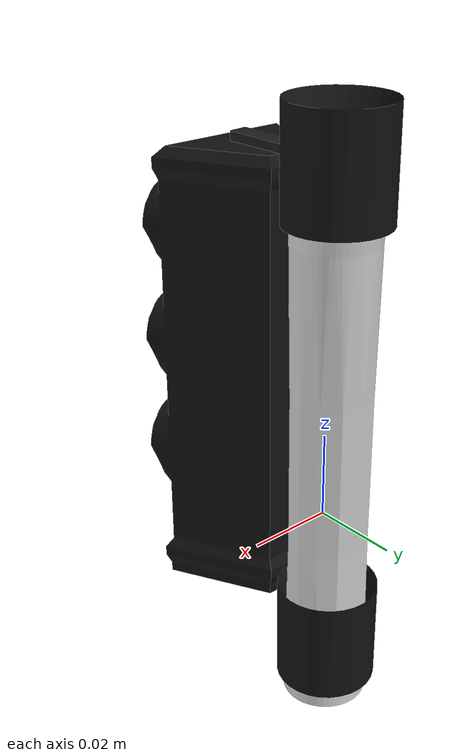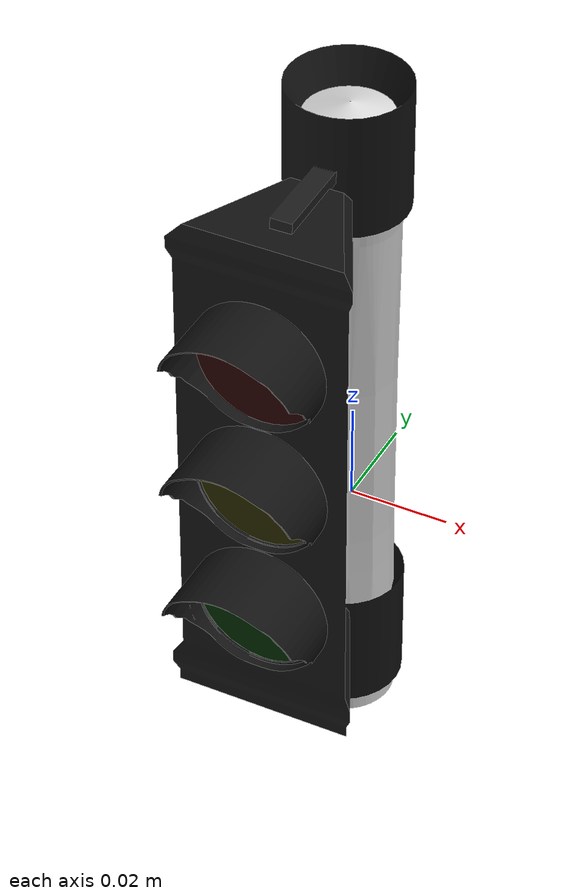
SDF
<?xml version="1.0" encoding="UTF-8"?>
<sdf version='1.6'>
    <model name="traffic_light">
        <static>1</static>

        <link name="body_link">
            <visual name="body_mesh">
                <pose>0 0 0 0 0 0</pose>
                <geometry>
                    <mesh>
                        <uri>model://traffic_light/meshes/traffic_light.dae</uri>
                        <scale>1.5 1.5 1.5</scale>
                    </mesh>
                </geometry>
            </visual>
        </link>

        <link name="red_led">
            <pose>-0.001 -0.035 0.055 1.57 0.0 0.0</pose>
            <light name='light' type='spot'>
                <pose>0 0 0 0 0 0</pose>
                <attenuation>
                    <range>4.0</range>
                    <constant>0.3</constant>
                    <linear>0.01</linear>
                    <quadratic>5.0</quadratic>
                </attenuation>
                <diffuse>1 0 0 1</diffuse>
                <specular>1 0 0 1</specular>
                <direction>0 -11.0 -1.0</direction>
                <spot>
                    <inner_angle>0.8</inner_angle>
                    <outer_angle>2.0</outer_angle>
                    <falloff>1.0</falloff>
                </spot>
                <cast_shadows>false</cast_shadows>
            </light>
            <visual name="visual">
                <geometry>
                    <cylinder>
                        <radius>0.01415</radius>
                        <length>0.0005</length>
                    </cylinder>
                </geometry>
                <material>
                    <ambient>0.15 0 0 1</ambient>
                    <emissive>1 0 0 1</emissive>
                </material>
            </visual>
        </link>

        <link name="yellow_led">
            <pose>-0.001 -0.035 0.028 1.57 0.0 0.0</pose>
            <light name='light' type='spot'>
                <pose>0 0 0 0 0 0</pose>
                <attenuation>
                    <range>4.0</range>
                    <constant>0.3</constant>
                    <linear>0.01</linear>
                    <quadratic>5.0</quadratic>
                </attenuation>
                <diffuse>1 1 0 1</diffuse>
                <specular>1 1 0 1</specular>
                <direction>0 -11.0 -1.0</direction>
                <spot>
                    <inner_angle>0.8</inner_angle>
                    <outer_angle>2.0</outer_angle>
                    <falloff>1.0</falloff>
                </spot>
                <cast_shadows>false</cast_shadows>
            </light>
            <visual name="visual">
                <geometry>
                    <cylinder>
                        <radius>0.01415</radius>
                        <length>0.0005</length>
                    </cylinder>
                </geometry>
                <material>
                    <ambient>0.15 0.15 0 1</ambient>
                    <emissive>1 1 0 1</emissive>
                </material>
            </visual>
        </link>

        <link name="green_led">
            <pose>-0.001 -0.035 -0.001 1.57 0.0 0.0</pose>
            <light name='light' type='spot'>
                <pose>0 0 0 0 0 0</pose>
                <attenuation>
                    <range>4.0</range>
                    <constant>0.3</constant>
                    <linear>0.01</linear>
                    <quadratic>5.0</quadratic>
                </attenuation>
                <diffuse>0 1 0 1</diffuse>
                <specular>0 1 0 1</specular>
                <direction>0 -11.0 -1.0</direction>
                <spot>
                    <inner_angle>0.8</inner_angle>
                    <outer_angle>2.0</outer_angle>
                    <falloff>1.0</falloff>
                </spot>
                <cast_shadows>false</cast_shadows>
            </light>
            <visual name="visual">
                <geometry>
                    <cylinder>
                        <radius>0.01415</radius>
                        <length>0.0005</length>
                    </cylinder>
                </geometry>
                <material>
                    <ambient>0 0.15 0 1</ambient>
                    <emissive>0 1 0 1</emissive>
                </material>
            </visual>
        </link>

        <joint name="joint_1" type="fixed">
            <parent>body_link</parent>
            <child>green_led</child>
        </joint>
        <joint name="joint_2" type="fixed">
            <parent>body_link</parent>
            <child>yellow_led</child>
        </joint>
        <joint name="joint_3" type="fixed">
            <parent>body_link</parent>
            <child>red_led</child>
        </joint>

    </model>
</sdf>
